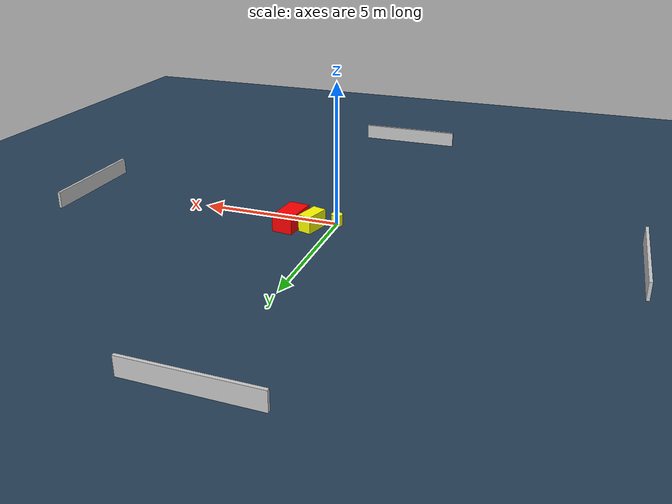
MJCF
<?xml version="1.0" ?>
<mujoco model="generated_environment">
  <option timestep="0.01" integrator="RK4" cone="elliptic"/>
  <default>
    <geom density="1"/>
  </default>
  <asset>
    <texture builtin="gradient" height="3072" name="skybox" rgb1="0.3 0.5 0.7" rgb2="0 0 0" type="skybox" width="512"/>
    <texture builtin="checker" height="300" name="groundplane" rgb1="0.2 0.3 0.4" rgb2="0.1 0.2 0.3" type="2d" width="300"/>
    <material name="groundplane" reflectance="0.2" texrepeat="5 5" texture="groundplane"/>
  </asset>
  <worldbody>
    <light dir="0 0 -1" directional="true" pos="0 0 1.5"/>
    <geom condim="3" friction="0.5 0.005 0.001" material="groundplane" name="floor" pos="0 0 0" size="0 0 0.05" type="plane"/>
    <body name="walls">
      <geom name="wall_1" condim="4" pos="-10.0 0.0 0.3" rgba="0.800000011920929 0.800000011920929 0.800000011920929 1.0" size="0.05 2.0 0.3" type="box"/>
      <geom name="wall_2" condim="4" pos="10.0 0.0 0.3" rgba="0.800000011920929 0.800000011920929 0.800000011920929 1.0" size="0.05 2.0 0.3" type="box"/>
      <geom name="wall_3" condim="4" pos="0.0 -10.0 0.3" rgba="0.800000011920929 0.800000011920929 0.800000011920929 1.0" size="2.0 0.05 0.3" type="box"/>
      <geom name="wall_4" condim="4" pos="0.0 10.0 0.3" rgba="0.800000011920929 0.800000011920929 0.800000011920929 1.0" size="2.0 0.05 0.3" type="box"/>
    </body>
    <body name="robot">
      <joint name="joint_x" type="slide" pos="0 0 0" axis="1 0 0"/>
      <joint name="joint_y" type="slide" pos="0 0 0" axis="0 1 0"/>
      <geom name="robot" type="cylinder" pos="0.0 0.0 0.2" size="0.2 0.2 0.0" mass="5.0" friction="1.0 0.005 0.0001" condim="4" rgba="1.0 1.0 0.0 1.0"/>
    </body>
    <body name="obstacle_1_movable">
      <geom name="obstacle_1_movable" condim="4" pos="0.7041001092437142 0.5560776076792875 0.3" euler="0 0 74.57934974233247" friction="0.0 0.005 0.001" rgba="1.0 1.0 0.0 1.0" size="0.45232923922052104 0.2423072355192773 0.3" type="box" mass="0.1"/>
      <joint type="free"/>
    </body>
    <body name="obstacle_2_static">
      <geom name="obstacle_2_static" condim="4" pos="1.4549389140568703 0.6254737614927892 0.3" euler="0 0 174.28490941954587" friction="0.0 0.005 0.001" rgba="1.0 0.0 0.0 1.0" size="0.3649050891520087 0.655499152468179 0.3" type="box"/>
    </body>
  </worldbody>
  <actuator>
    <motor name="actuator_x" joint="joint_x" gear="1" ctrlrange="-1 1"/>
    <motor name="actuator_y" joint="joint_y" gear="1" ctrlrange="-1 1"/>
  </actuator>
</mujoco>
